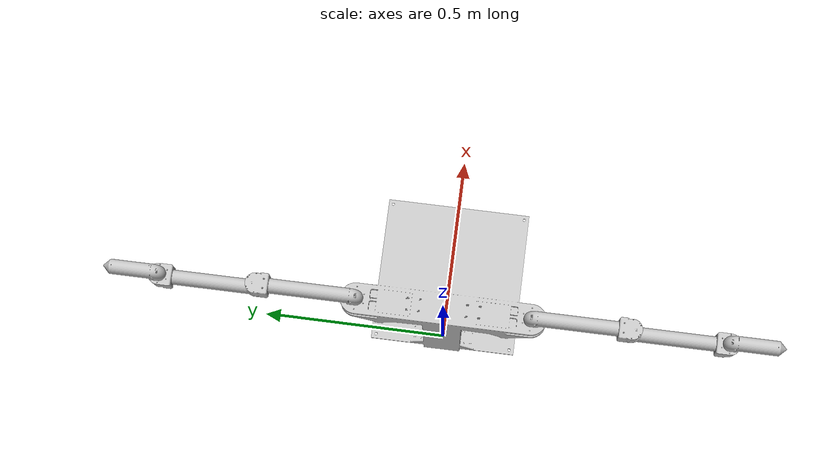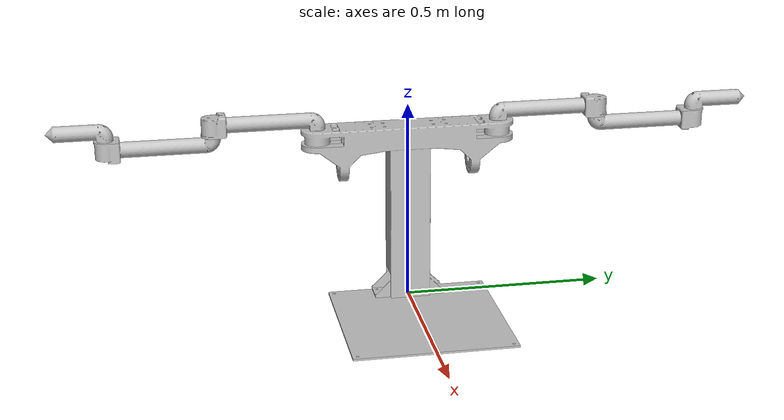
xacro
<?xml version="1.0" encoding="utf-8"?>
<robot name="dual_arm" xmlns:xacro="http://www.ros.org/wiki/xacro">

  <link name="world"/>

  <link name="link_base">
    <inertial>
      <origin
        xyz="0.03796 1.7173E-16 0.25423"
        rpy="0 0 0" />
      <mass value="3.5758" />
      <inertia
        ixx="0.025052"
        ixy="6.2851E-09"
        ixz="-3.5439E-18"
        iyy="0.023819"
        iyz="1.6517E-20"
        izz="0.025923" />
    </inertial>
    <visual>
      <origin
        xyz="0 0 0"
        rpy="0 0 0" />
      <geometry>
        <mesh
          filename="file://$(find dual_arm)/meshes/link_base.STL" />
      </geometry>
      <material
        name="">
        <color
          rgba="0.75294 0.75294 0.75294 1" />
      </material>
    </visual>
    <collision>
      <origin
        xyz="0 0 0"
        rpy="0 0 0" />
      <geometry>
        <mesh
          filename="file://$(find dual_arm)/meshes/link_base.STL" />
      </geometry>
    </collision>
  </link>

  <joint name="world_base" type="fixed">
        <parent link="world"/>
        <child link="link_base"/>
        <origin xyz="0 0 0" rpy="0 0 0"/>
    </joint>

  <link
    name="link_11">
    <inertial>
      <origin
        xyz="4.7288E-05 0.18267 -0.022599"
        rpy="0 0 0" />
      <mass
        value="0.23338" />
      <inertia
        ixx="0.00020277"
        ixy="1.1662E-08"
        ixz="1.8729E-08"
        iyy="7.5926E-05"
        iyz="-3.0936E-07"
        izz="0.00021878" />
    </inertial>
    <visual>
      <origin
        xyz="0 0 0"
        rpy="0 0 0" />
      <geometry>
        <mesh
          filename="file://$(find dual_arm)/meshes/link_11.STL" />
      </geometry>
      <material
        name="">
        <color
          rgba="0.75294 0.75294 0.75294 1" />
      </material>
    </visual>
    <collision>
      <origin
        xyz="0 0 0"
        rpy="0 0 0" />
      <geometry>
        <mesh
          filename="file://$(find dual_arm)/meshes/link_11.STL" />
      </geometry>
    </collision>
  </link>
  <joint
    name="joint_11"
    type="revolute">
    <origin
      xyz="0 -0.224 0.4465"
      rpy="3.1416 0 0" />
    <parent
      link="link_base" />
    <child
      link="link_11" />
    <axis
      xyz="0 0 -1" />
    <limit
      lower="${-pi}"
      upper="${pi}"
      effort="10000"
      velocity="1000" />
  </joint>
  <link
    name="link_21">
    <inertial>
      <origin
        xyz="-0.00010797 0.18622 0.022644"
        rpy="0 0 0" />
      <mass
        value="0.22941" />
      <inertia
        ixx="0.00020107"
        ixy="-7.8197E-08"
        ixz="1.9636E-07"
        iyy="7.5839E-05"
        iyz="3.3147E-07"
        izz="0.0002169" />
    </inertial>
    <visual>
      <origin
        xyz="0 0 0"
        rpy="0 0 0" />
      <geometry>
        <mesh
          filename="file://$(find dual_arm)/meshes/link_21.STL" />
      </geometry>
      <material
        name="">
        <color
          rgba="0.75294 0.75294 0.75294 1" />
      </material>
    </visual>
    <collision>
      <origin
        xyz="0 0 0"
        rpy="0 0 0" />
      <geometry>
        <mesh
          filename="file://$(find dual_arm)/meshes/link_21.STL" />
      </geometry>
    </collision>
  </link>
  <joint
    name="joint_21"
    type="revolute">
    <origin
      xyz="0 0.253 -0.005"
      rpy="0 0 0" />
    <parent
      link="link_11" />
    <child
      link="link_21" />
    <axis
      xyz="0 0 1" />
    <limit
      lower="${-pi}"
      upper="${pi}"
      effort="10000"
      velocity="1000" />
  </joint>
  <link
    name="link_31">
    <inertial>
      <origin
        xyz="-4.4684E-08 0.051237 -0.022159"
        rpy="0 0 0" />
      <mass
        value="0.071538" />
      <inertia
        ixx="3.2633E-05"
        ixy="-1.8853E-11"
        ixz="-1.0681E-10"
        iyy="1.8609E-05"
        iyz="3.3532E-06"
        izz="3.2135E-05" />
    </inertial>
    <visual>
      <origin
        xyz="0 0 0"
        rpy="0 0 0" />
      <geometry>
        <mesh
          filename="file://$(find dual_arm)/meshes/link_31.STL" />
      </geometry>
      <material
        name="">
        <color
          rgba="0.75294 0.75294 0.75294 1" />
      </material>
    </visual>
    <collision>
      <origin
        xyz="0 0 0"
        rpy="0 0 0" />
      <geometry>
        <mesh
          filename="file://$(find dual_arm)/meshes/link_31.STL" />
      </geometry>
    </collision>
  </link>
  <joint
    name="joint_31"
    type="revolute">
    <origin
      xyz="0 0.253 0.005"
      rpy="0 0 0" />
    <parent
      link="link_21" />
    <child
      link="link_31" />
    <axis
      xyz="0 0 -1" />
    <limit
      lower="${-pi}"
      upper="${pi}"
      effort="10000"
      velocity="1000" />
  </joint>
  <link
    name="link_12">
    <inertial>
      <origin
        xyz="-4.0216E-05 0.18266 0.022592"
        rpy="0 0 0" />
      <mass
        value="0.23333" />
      <inertia
        ixx="0.00020275"
        ixy="-4.6038E-09"
        ixz="-8.3576E-09"
        iyy="7.5902E-05"
        iyz="3.0086E-07"
        izz="0.00021877" />
    </inertial>
    <visual>
      <origin
        xyz="0 0 0"
        rpy="0 0 0" />
      <geometry>
        <mesh
          filename="file://$(find dual_arm)/meshes/link_12.STL" />
      </geometry>
      <material
        name="">
        <color
          rgba="0.75294 0.75294 0.75294 1" />
      </material>
    </visual>
    <collision>
      <origin
        xyz="0 0 0"
        rpy="0 0 0" />
      <geometry>
        <mesh
          filename="file://$(find dual_arm)/meshes/link_12.STL" />
      </geometry>
    </collision>
  </link>
  <joint
    name="joint_12"
    type="revolute">
    <origin
      xyz="0 0.224 0.4465"
      rpy="0 0 0" />
    <parent
      link="link_base" />
    <child
      link="link_12" />
    <axis
      xyz="0 0 1" />
    <limit
      lower="${-pi}"
      upper="${pi}"
      effort="10000"
      velocity="1000" />
  </joint>
  <link
    name="link_22">
    <inertial>
      <origin
        xyz="4.7971E-05 0.18609 -0.022546"
        rpy="0 0 0" />
      <mass
        value="0.22941" />
      <inertia
        ixx="0.00020059"
        ixy="1.1043E-08"
        ixz="1.9149E-08"
        iyy="7.4854E-05"
        iyz="-7.4492E-07"
        izz="0.00021668" />
    </inertial>
    <visual>
      <origin
        xyz="0 0 0"
        rpy="0 0 0" />
      <geometry>
        <mesh
          filename="file://$(find dual_arm)/meshes/link_22.STL" />
      </geometry>
      <material
        name="">
        <color
          rgba="0.75294 0.75294 0.75294 1" />
      </material>
    </visual>
    <collision>
      <origin
        xyz="0 0 0"
        rpy="0 0 0" />
      <geometry>
        <mesh
          filename="file://$(find dual_arm)/meshes/link_22.STL" />
      </geometry>
    </collision>
  </link>
  <joint
    name="joint_22"
    type="revolute">
    <origin
      xyz="0 0.253 0.005"
      rpy="0 0 0" />
    <parent
      link="link_12" />
    <child
      link="link_22" />
    <axis
      xyz="0 0 -1" />
    <limit
      lower="${-pi}"
      upper="${pi}"
      effort="10000"
      velocity="1000" />
  </joint>
  <link
    name="link_32">
    <inertial>
      <origin
        xyz="4.4684E-08 0.051237 0.022159"
        rpy="0 0 0" />
      <mass
        value="0.071538" />
      <inertia
        ixx="3.2633E-05"
        ixy="1.8853E-11"
        ixz="-1.0681E-10"
        iyy="1.8609E-05"
        iyz="-3.3532E-06"
        izz="3.2135E-05" />
    </inertial>
    <visual>
      <origin
        xyz="0 0 0"
        rpy="0 0 0" />
      <geometry>
        <mesh
          filename="file://$(find dual_arm)/meshes/link_32.STL" />
      </geometry>
      <material
        name="">
        <color
          rgba="0.75294 0.75294 0.75294 1" />
      </material>
    </visual>
    <collision>
      <origin
        xyz="0 0 0"
        rpy="0 0 0" />
      <geometry>
        <mesh
          filename="file://$(find dual_arm)/meshes/link_32.STL" />
      </geometry>
    </collision>
  </link>
  <joint
    name="joint_32"
    type="revolute">
    <origin
      xyz="0 0.253 -0.005"
      rpy="0 0 0" />
    <parent
      link="link_22" />
    <child
      link="link_32" />
    <axis
      xyz="0 0 1" />
    <limit
      lower="${-pi}"
      upper="${pi}"
      effort="10000"
      velocity="1000" />
  </joint>

  <transmission name="tran1">
    <type>transmission_interface/SimpleTransmission</type>
    <joint name="joint_11">
      <hardwareInterface>PositionJointInterface</hardwareInterface>
    </joint>
    <actuator name="m1">
      <mechanicalReduction>1</mechanicalReduction>
      <hardwareInterface>PositionJointInterface</hardwareInterface>
    </actuator>
  </transmission>

  <transmission name="tran2">
    <type>transmission_interface/SimpleTransmission</type>
    <joint name="joint_21">
      <hardwareInterface>PositionJointInterface</hardwareInterface>
    </joint>
    <actuator name="m2">
      <mechanicalReduction>1</mechanicalReduction>
      <hardwareInterface>PositionJointInterface</hardwareInterface>
    </actuator>
  </transmission>

  <transmission name="tran3">
    <type>transmission_interface/SimpleTransmission</type>
    <joint name="joint_31">
      <hardwareInterface>PositionJointInterface</hardwareInterface>
    </joint>
    <actuator name="m3">
      <mechanicalReduction>1</mechanicalReduction>
      <hardwareInterface>PositionJointInterface</hardwareInterface>
    </actuator>
  </transmission>

  <transmission name="tran4">
    <type>transmission_interface/SimpleTransmission</type>
    <joint name="joint_12">
      <hardwareInterface>PositionJointInterface</hardwareInterface>
    </joint>
    <actuator name="m4">
      <mechanicalReduction>1</mechanicalReduction>
      <hardwareInterface>PositionJointInterface</hardwareInterface>
    </actuator>
  </transmission>

  <transmission name="tran5">
    <type>transmission_interface/SimpleTransmission</type>
    <joint name="joint_22">
      <hardwareInterface>PositionJointInterface</hardwareInterface>
    </joint>
    <actuator name="m5">
      <mechanicalReduction>1</mechanicalReduction>
      <hardwareInterface>PositionJointInterface</hardwareInterface>
    </actuator>
  </transmission>

  <transmission name="tran6">
    <type>transmission_interface/SimpleTransmission</type>
    <joint name="joint_32">
      <hardwareInterface>PositionJointInterface</hardwareInterface>
    </joint>
    <actuator name="m6">
      <mechanicalReduction>1</mechanicalReduction>
      <hardwareInterface>PositionJointInterface</hardwareInterface>
    </actuator>
  </transmission>

</robot>
